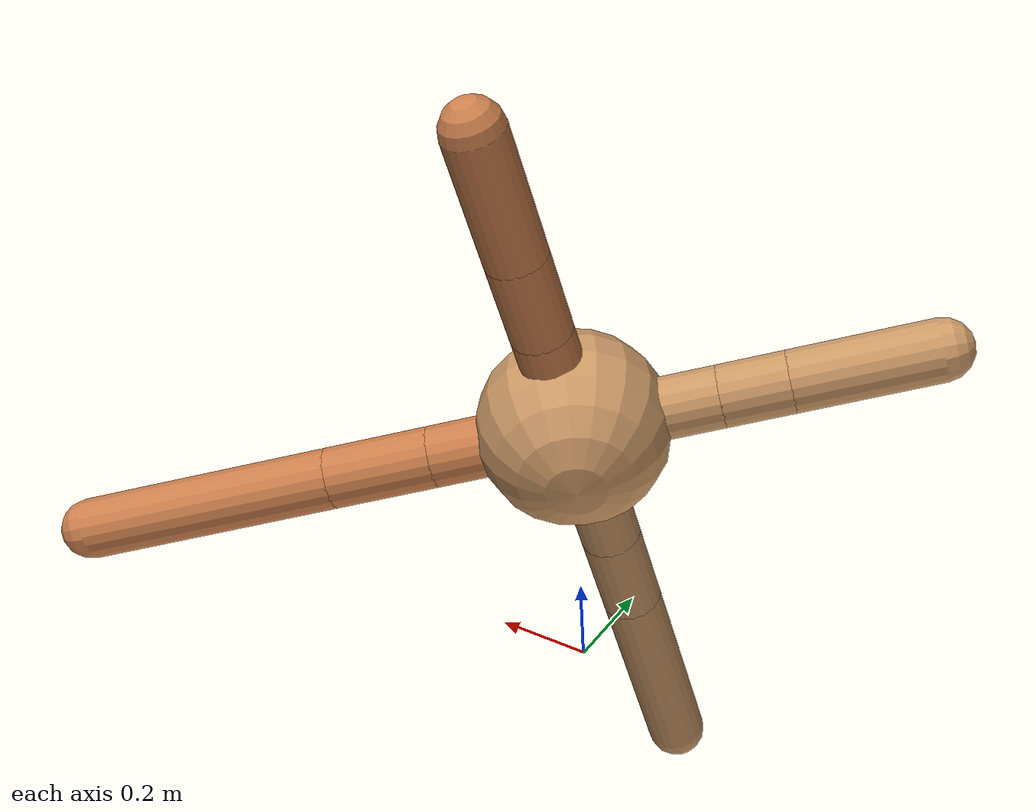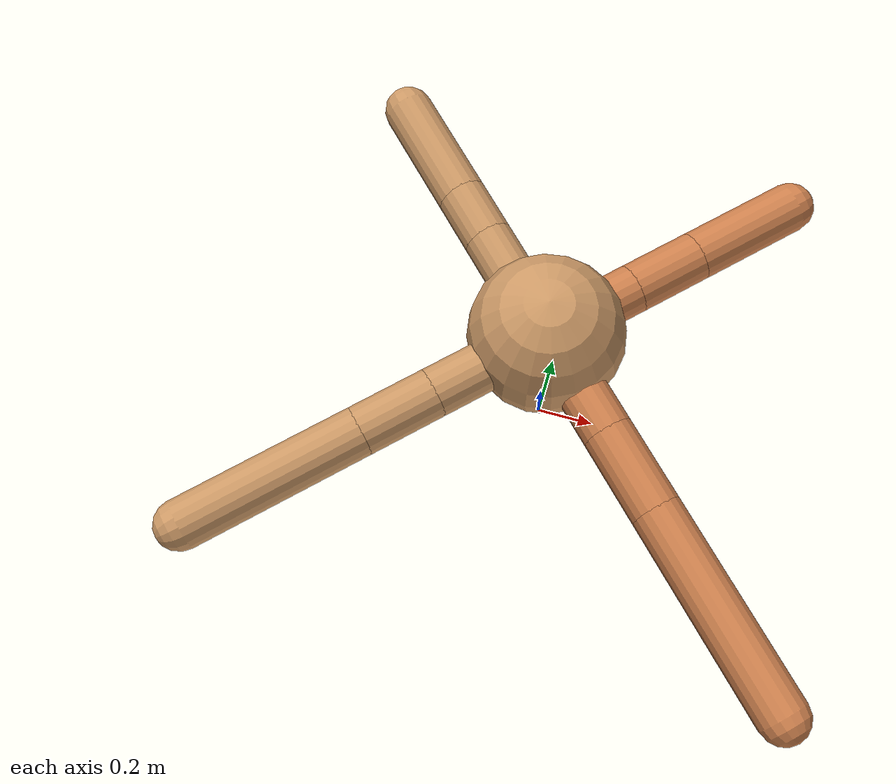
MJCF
<mujoco model="ant">
  <compiler angle="degree" coordinate="local" inertiafromgeom="true" />
  <option integrator="RK4" timestep="0.01" />
  <custom>
    <numeric data="0.0 0.0 0.55 1.0 0.0 0.0 0.0 0.0 1.0 0.0 -1.0 0.0 -1.0 0.0 1.0" name="init_qpos" />
  </custom>
  <default>
    <joint armature="1" damping="1" limited="true" />
    <geom conaffinity="0" condim="3" density="5.0" friction="1.5 0.1 0.1" margin="0.01" rgba="0.8 0.6 0.4 1" />
  </default>
  <worldbody>
    <body name="torso" pos="0 0 0.75">
      <geom name="torso_geom" pos="0 0 0" size="0.25" type="sphere" />

      <body name="front_left_leg" pos="0 0 0">
        <geom fromto="0.0 0.0 0.0 0.22206844449504204 0.22206844449504204 0.0" name="aux_1_geom" size="0.08" type="capsule" rgba=".8 .5 .3 1" />
        <body name="aux_1" pos="0.22206844449504204 0.22206844449504204 0.0">
          <joint axis="0 0 1" name="hip_1" pos="0.0 0.0 0.0" range="-40 40" type="hinge" />
          <geom fromto="0.0 0.0 0.0 0.16334440477079268 0.16334440477079268 0.0" name="left_leg_geom" size="0.08" type="capsule" rgba=".8 .5 .3 1" />
          <body pos="0.16334440477079268 0.16334440477079268 0.0" name="front_left_foot">
            <joint axis="-1 1 0" name="ankle_1" pos="0.0 0.0 0.0" range="30 100" type="hinge" />
            <geom fromto="0.0 0.0 0.0 0.2540169671218347 0.2540169671218347 0.0" name="left_ankle_geom" size="0.08" type="capsule" rgba=".8 .5 .3 1" />
          </body>
        </body>
      </body>
      <body name="front_right_leg" pos="0 0 0">
        <geom fromto="0.0 0.0 0.0 -0.2655221431688823 0.2655221431688823 0.0" name="aux_2_geom" size="0.08" type="capsule" />
        <body name="aux_2" pos="-0.2655221431688823 0.2655221431688823 0.0">
          <joint axis="0 0 1" name="hip_2" pos="0.0 0.0 0.0" range="-40 40" type="hinge" />
          <geom fromto="0.0 0.0 0.0 -0.12363745406834961 0.12363745406834961 0.0" name="right_leg_geom" size="0.08" type="capsule" />
          <body pos="-0.12363745406834961 0.12363745406834961 0.0" name="front_right_foot">
            <joint axis="1 1 0" name="ankle_2" pos="0.0 0.0 0.0" range="-100 -30" type="hinge" />
            <geom fromto="0.0 0.0 0.0 -0.26207352587208715 0.26207352587208715 0.0" name="right_ankle_geom" size="0.08" type="capsule" />
          </body>
        </body>
      </body>
      <body name="left_back_leg" pos="0 0 0">
        <geom fromto="0.0 0.0 0.0 -0.28227641186699703 -0.28227641186699703 0.0" name="aux_3_geom" size="0.08" type="capsule" />
        <body name="aux_3" pos="-0.28227641186699703 -0.28227641186699703 0.0">
          <joint axis="0 0 1" name="hip_3" pos="0.0 0.0 0.0" range="-40 40" type="hinge" />
          <geom fromto="0.0 0.0 0.0 -0.17749095563644143 -0.17749095563644143 0.0" name="back_leg_geom" size="0.08" type="capsule" />
          <body pos="-0.17749095563644143 -0.17749095563644143 0.0" name="left_back_foot">
            <joint axis="-1 1 0" name="ankle_3" pos="0.0 0.0 0.0" range="-100 -30" type="hinge" />
            <geom fromto="0.0 0.0 0.0 -0.41728713875405826 -0.41728713875405826 0.0" name="third_ankle_geom" size="0.08" type="capsule" />
          </body>
        </body>
      </body>
      <body name="right_back_leg" pos="0 0 0">
        <geom fromto="0.0 0.0 0.0 0.26124807934771593 -0.26124807934771593 0.0" name="aux_4_geom" size="0.08" type="capsule" rgba=".8 .5 .3 1" />
        <body name="aux_4" pos="0.26124807934771593 -0.26124807934771593 0.0">
          <joint axis="0 0 1" name="hip_4" pos="0.0 0.0 0.0" range="-40 40" type="hinge" />
          <geom fromto="0.0 0.0 0.0 0.194961208600025 -0.194961208600025 0.0" name="rightback_leg_geom" size="0.08" type="capsule" rgba=".8 .5 .3 1" />
          <body pos="0.194961208600025 -0.194961208600025 0.0" name="right_back_foot">
            <joint axis="1 1 0" name="ankle_4" pos="0.0 0.0 0.0" range="30 100" type="hinge" />
            <geom fromto="0.0 0.0 0.0 0.47535701996272073 -0.47535701996272073 0.0" name="fourth_ankle_geom" size="0.08" type="capsule" rgba=".8 .5 .3 1" />
          </body>
        </body>
      </body>
    </body>
  </worldbody>
  <actuator>
    <motor ctrllimited="true" ctrlrange="-1.0 1.0" joint="hip_4" gear="150" />
    <motor ctrllimited="true" ctrlrange="-1.0 1.0" joint="ankle_4" gear="150" />
    <motor ctrllimited="true" ctrlrange="-1.0 1.0" joint="hip_1" gear="150" />
    <motor ctrllimited="true" ctrlrange="-1.0 1.0" joint="ankle_1" gear="150" />
    <motor ctrllimited="true" ctrlrange="-1.0 1.0" joint="hip_2" gear="150" />
    <motor ctrllimited="true" ctrlrange="-1.0 1.0" joint="ankle_2" gear="150" />
    <motor ctrllimited="true" ctrlrange="-1.0 1.0" joint="hip_3" gear="150" />
    <motor ctrllimited="true" ctrlrange="-1.0 1.0" joint="ankle_3" gear="150" />
  </actuator>
</mujoco>
